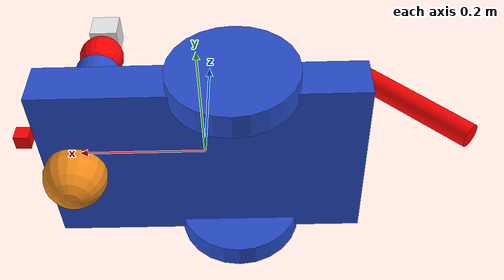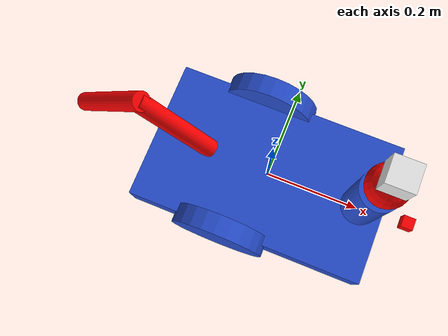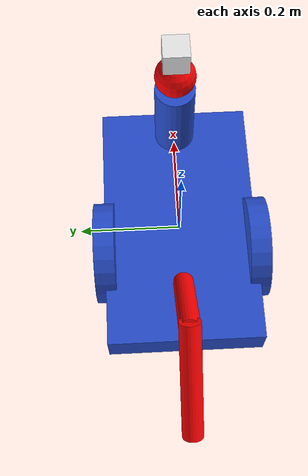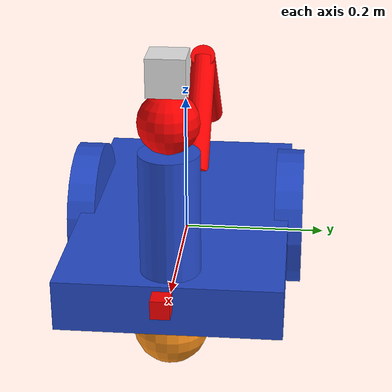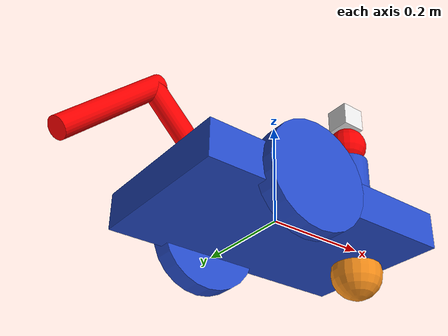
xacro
<?xml version="1.0" ?>
<robot name="robot" xmlns:xacro="https://www.ros.org/wiki/xacro" >

 <xacro:include filename="$(find exp_assignment3)/urdf/materials.xacro" />
 <xacro:include filename="$(find exp_assignment3)/urdf/robot2.gazebo" />

 <xacro:macro name="cylinder_inertia" params="mass r l">
    <inertia ixx="${mass*(3*r*r+l*l)/12}" ixy = "0" ixz = "0"
                iyy="${mass*(3*r*r+l*l)/12}" iyz = "0" izz="${mass*(r*r)/2}" />
 </xacro:macro>

    <xacro:macro name="link_wheel" params="name">
        <link name="${name}">
            <inertial>
              <mass value="0.2"/>
              <origin rpy="0 1.5707 1.5707" xyz="0 0 0"/>
              <inertia ixx="0.000526666666667" ixy="0" ixz="0" iyy="0.000526666666667" iyz="0" izz="0.001"/>
            </inertial>
            <collision name="link_right_wheel_collision">
              <origin rpy="0 1.5707 1.5707" xyz="0 0 0"/>
              <geometry>
                <cylinder length="0.04" radius="0.1"/>
              </geometry>
            </collision>
            <visual name="${name}_visual">
              <origin rpy="0 1.5707 1.5707" xyz="0 0 0"/>
              <geometry>
                <cylinder length="0.04" radius="0.1"/>
              </geometry>
            </visual>
        </link>
    </xacro:macro>

    <xacro:macro name="joint_wheel" params="name child origin_xyz">
      <joint name="${name}" type="continuous">
        <origin rpy="0 0 0" xyz="${origin_xyz}"/>
        <child link="${child}"/>
        <parent link="base_link"/>
        <axis rpy="0 0 0" xyz="0 1 0"/>
        <limit effort="10000" velocity="1000"/>
        <joint_properties damping="1.0" friction="1.0"/>
      </joint>
    </xacro:macro>

  <link name="base_link">
    <!-- pose and inertial -->
    <pose>0 0 0.1 0 0 0</pose>

    <inertial>
      <mass value="5"/>
      <origin rpy="0 0 0" xyz="0 0 0.1"/>
      <inertia ixx="0.0395416666667" ixy="0" ixz="0" iyy="0.106208333333" iyz="0" izz="0.106208333333"/>
    </inertial>

    <collision name="collision_chassis">
      <geometry>
        <box size="0.5 0.3 0.07"/>
      </geometry>
    </collision>

    <visual>
      <origin rpy="0 0 0" xyz="0 0 0"/>
      <geometry>
        <box size="0.5 0.3 0.07"/>
      </geometry>
      <material name="blue"/>
    </visual>

    <!-- caster front -->
    <collision name="caster_front_collision">
      <origin rpy=" 0 0 0" xyz="0.35 0 -0.05"/>
      <geometry>
        <sphere radius="0.05"/>
      </geometry>
      <surface>
        <friction>
          <ode>
            <mu>0</mu>
            <mu2>0</mu2>
            <slip1>1.0</slip1>
            <slip2>1.0</slip2>
          </ode>
        </friction>
      </surface>
    </collision>
    <visual name="caster_front_visual">
      <origin rpy=" 0 0 0" xyz="0.2 0 -0.05"/>
      <geometry>
        <sphere radius="0.05"/>
      </geometry>
    </visual>
    </link>

  <!-- Create wheels -->

  <xacro:link_wheel name="link_right_wheel" />
  <xacro:link_wheel name="link_left_wheel" />
  <xacro:joint_wheel name="joint_right_wheel"  child="link_right_wheel"  origin_xyz="-0.05 0.15 0"  />
  <xacro:joint_wheel name="joint_left_wheel"   child="link_left_wheel"   origin_xyz="-0.05 -0.15 0"  />

<!--arm definition -->

  <link name="arm_base_link">
  	<inertial>
  		<mass value="0.1"/>
  		<origin xyz="0 0 0" rpy="0 0 0" />
  		<inertia ixx="0.0000416666667" ixy="0" ixz="0" iyy="0.0000416666667" iyz="0" izz="0.0000416666667"/>
  	</inertial>
  	<collision>
  	  <origin xyz="0 0 0" rpy="0 0 0"/>
      <geometry>
       <cylinder radius="0.04" length="0.20"/>
      </geometry>
  	</collision>
  	<visual>
  	  <origin xyz="0 0 0" rpy="0 0 0"/>
      <geometry>
        <cylinder radius="0.04" length="0.20"/>
      </geometry>
      <material name="blue" />
  	</visual>
  </link>

  <joint name="arm_base_to_base" type="fixed">
  	<origin rpy="0 0 0" xyz="0.20 0 0.1"/>
  	<parent link="base_link"/>
  	<child link="arm_base_link"/>
  </joint>

  <link name="tail_link1">
  	<inertial>
  		<mass value="0.1"/>
  		<origin xyz="0 0 0" rpy="0 0 0" />
  		<inertia ixx="0.0000416666667" ixy="0" ixz="0" iyy="0.0000416666667" iyz="0" izz="0.0000416666667"/>
  	</inertial>
  	<collision>
  	  <origin xyz="0 0 0" rpy="0 0 0"/>
      <geometry>
        <cylinder radius="0.04" length="0.20"/>
      </geometry>
  	</collision>
  	<visual>
  	  <origin xyz="0 0 0" rpy="0 0 0"/>
      <geometry>
        <cylinder radius="0.02" length="0.20"/>
      </geometry>
      <material name="red" />
  	</visual>
  </link>

  <joint name="tail1" type="fixed">
  	<origin rpy="0 -0.78 0" xyz="-0.20 0 0.1"/>
  	<parent link="base_link"/>
  	<child link="tail_link1"/>
  </joint>

    <link name="tail_link2">
  	<inertial>
  		<mass value="0.1"/>
  		<origin xyz="0 0 0" rpy="0 0 0" />
  		<inertia ixx="0.0000416666667" ixy="0" ixz="0" iyy="0.0000416666667" iyz="0" izz="0.0000416666667"/>
  	</inertial>
  	<collision>
  	  <origin xyz="0 0 0" rpy="0 0 0"/>
      <geometry>
        <cylinder radius="0.02" length="0.23"/>
      </geometry>
  	</collision>
  	<visual>
  	  <origin xyz="0 0 0" rpy="0 0 0"/>
      <geometry>
        <cylinder radius="0.02" length="0.23"/>
      </geometry>
      <material name="red" />
  	</visual>
  </link>

  <joint name="tail2" type="fixed">
  	<origin xyz="-0.1 0 0.1" rpy="0 -1.56 0"/>
  	<parent link="tail_link1"/>
  	<child link="tail_link2"/>
  </joint>

  <link name="arm_link_01">
  	<inertial>
  		<mass value="0.025"/>
  		<origin xyz="0 0 0" rpy="0 0 0" />
  		<inertia ixx="0.000010279" ixy="0" ixz="0" iyy="0.000010279" iyz="0" izz="0.000007225"/>
  	</inertial>
  	<collision>
  	  <origin xyz="0 0 0" rpy="0 0 0"/>
      <geometry>
        <sphere radius="0.04" length="0.50"/>
      </geometry>
  	</collision>
  	<visual>
  	  <origin xyz="0 0 0" rpy="0 0 0"/>
      <geometry>
        <sphere radius="0.04" length="0.50"/>
      </geometry>
      <material name="red" />
  	</visual>
  </link>

  <link name="camera_link">
  	<inertial>
  		<mass value="0.01"/>
  		<origin xyz="0 0 0.025" rpy="0 0 0" />
  		<inertia ixx="0.00000416666667" ixy="0" ixz="0" iyy="0.00000416666667" iyz="0" izz="0.00000416666667"/>
  	</inertial>
  	<collision>
  	  <origin xyz="0 0 0" rpy="0 0 0"/>
      <geometry>
        <box size="0.05 0.05 0.05"/>
      </geometry>
  	</collision>
  	<visual>
  	  <origin xyz="0 0 0.025" rpy="0 0 0"/>
      <geometry>
        <box size="0.05 0.05 0.05"/>
      </geometry>
      <material name="white" />
  	</visual>
  </link>

  <joint name="arm_joint_01" type="revolute">
  	<axis xyz="1 0 0"/>
  	<limit effort="1000.0" lower="0" upper="0" velocity="0"/>
  	<origin rpy="0 0 0" xyz="0 0 0.14"/>
  	<parent link="arm_base_link"/>
  	<child link="arm_link_01"/>
  </joint>

  <joint name="camera_joint" type="fixed">
  	<origin rpy="0 0 0" xyz="0 0 0.04"/>
  	<parent link="arm_link_01"/>
  	<child link="camera_link"/>
  </joint>

<transmission name="arm_joint_01_trans">
	<type>transmission_interface/SimpleTransmission</type>
	<joint name="arm_joint_01">
		<hardwareInterface>hardware_interface/EffortJointInterface</hardwareInterface>
	</joint>
	<actuator name="motor1">
		<hardwareInterface>hardware_interface/EffortJointInterface</hardwareInterface>
		<mechanicalInterface>1</mechanicalInterface>
	</actuator>
</transmission>

 <link name="hokuyo_link">
	    <collision>
	      <origin xyz="0 0 0.00125" rpy="0 0 0"/>
	      <geometry>
		<box size="0.025 0.025 0.025"/>
	      </geometry>
	    </collision>
	    <visual>
	      <origin xyz="0 0 0.0125" rpy="0 0 0"/>
	      <geometry>
		<box size="0.025 0.025 0.025"/>
	      </geometry>
	      <material name="red">
		<color rgba="1 0 0 1"/>
	      </material>
	    </visual>
	    <inertial>
	      <mass value="1e-5" />
	      <origin xyz="0 0 0" rpy="0 0 0"/>
	      <inertia ixx="1e-6" ixy="0" ixz="0" iyy="1e-6" iyz="0" izz="1e-6" />
	    </inertial>
  </link>

  <joint name="hokuyo_joint" type="fixed">
	    <axis xyz="0 1 0" />
	    <origin xyz="0.3 0 0.025" rpy="0 0 0"/>
	    <parent link="base_link"/>
	    <child link="hokuyo_link"/>
	 </joint>

</robot>
